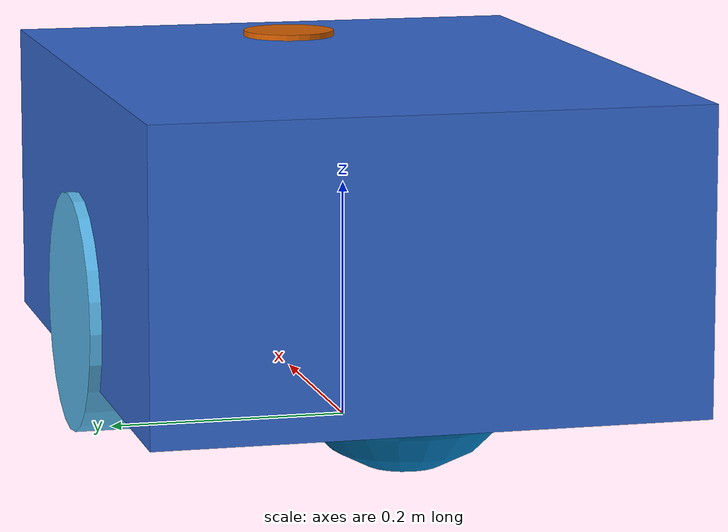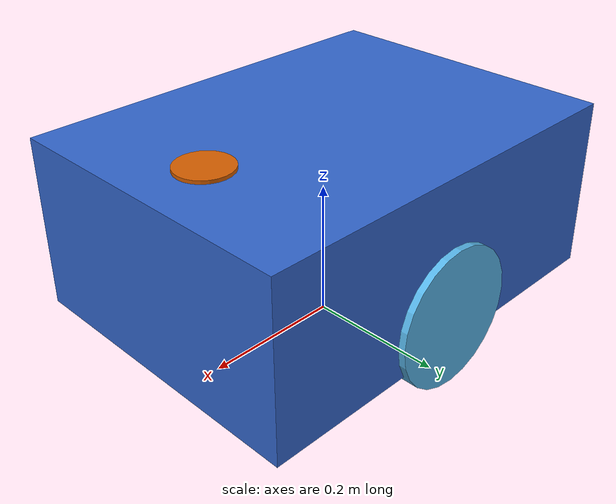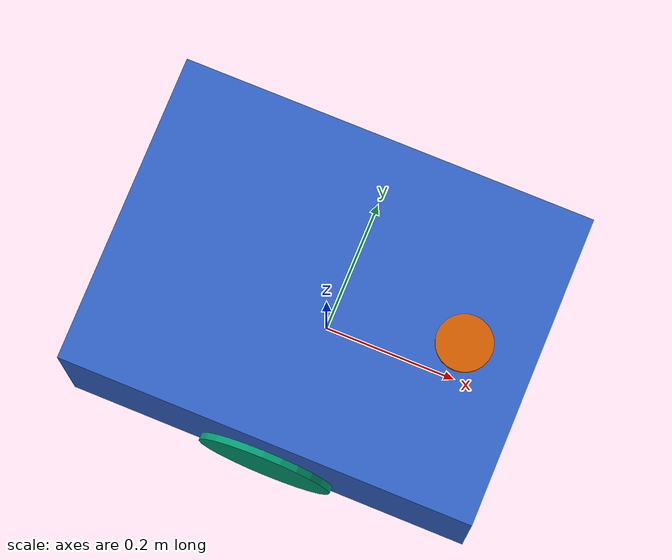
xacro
<?xml version="1.0"?>
<robot xmlns:xacro="http://www.ros.org/wiki/xacro" name="mekoniq_delivery">
  <xacro:arg name="namespace" default="robot_1"/>
  <!-- illustrative sim geometry; keep in sync with config/geometry_sim.yaml (a unit test checks) -->
  <xacro:property name="chassis_length" value="0.60"/>
  <xacro:property name="chassis_width" value="0.45"/>
  <xacro:property name="chassis_height" value="0.25"/>
  <xacro:property name="chassis_mass" value="20.0"/>
  <xacro:property name="wheel_radius" value="0.10"/>
  <xacro:property name="wheel_width" value="0.05"/>
  <xacro:property name="wheel_separation" value="0.42"/>
  <xacro:property name="wheel_mass" value="1.0"/>
  <xacro:property name="ground_clearance" value="0.05"/>
  <xacro:property name="lidar_x" value="0.20"/>
  <xacro:property name="lidar_height" value="0.28"/>
  <xacro:property name="max_linear_speed" value="0.6"/>
  <xacro:property name="ns" value="$(arg namespace)"/>

  <link name="base_link">
    <visual><origin xyz="0 0 ${ground_clearance + chassis_height / 2}"/><geometry><box size="${chassis_length} ${chassis_width} ${chassis_height}"/></geometry>
      <material name="body"><color rgba="0.2 0.4 0.8 1"/></material></visual>
    <collision><origin xyz="0 0 ${ground_clearance + chassis_height / 2}"/><geometry><box size="${chassis_length} ${chassis_width} ${chassis_height}"/></geometry></collision>
    <inertial><origin xyz="0 0 ${ground_clearance + chassis_height / 2}"/><mass value="${chassis_mass}"/>
      <inertia ixx="${chassis_mass * (chassis_width**2 + chassis_height**2) / 12}" iyy="${chassis_mass * (chassis_length**2 + chassis_height**2) / 12}"
               izz="${chassis_mass * (chassis_length**2 + chassis_width**2) / 12}" ixy="0" ixz="0" iyz="0"/></inertial>
  </link>

  <xacro:macro name="wheel" params="name side">
    <link name="${name}_wheel">
      <visual><origin rpy="${pi/2} 0 0"/><geometry><cylinder radius="${wheel_radius}" length="${wheel_width}"/></geometry></visual>
      <collision><origin rpy="${pi/2} 0 0"/><geometry><cylinder radius="${wheel_radius}" length="${wheel_width}"/></geometry></collision>
      <inertial><mass value="${wheel_mass}"/>
        <inertia ixx="${wheel_mass * (3 * wheel_radius**2 + wheel_width**2) / 12}" iyy="${wheel_mass * wheel_radius**2 / 2}"
                 izz="${wheel_mass * (3 * wheel_radius**2 + wheel_width**2) / 12}" ixy="0" ixz="0" iyz="0"/></inertial>
    </link>
    <joint name="${name}_wheel_joint" type="continuous">
      <parent link="base_link"/><child link="${name}_wheel"/><origin xyz="0 ${side * wheel_separation / 2} ${wheel_radius}" rpy="0 0 0"/><axis xyz="0 1 0"/>
    </joint>
  </xacro:macro>
  <xacro:wheel name="left" side="1"/>
  <xacro:wheel name="right" side="-1"/>

  <xacro:macro name="caster" params="name x">
    <link name="${name}_caster">
      <collision><geometry><sphere radius="${wheel_radius}"/></geometry></collision>
      <visual><geometry><sphere radius="${wheel_radius}"/></geometry></visual>
      <inertial><mass value="0.5"/><inertia ixx="0.001" iyy="0.001" izz="0.001" ixy="0" ixz="0" iyz="0"/></inertial>
    </link>
    <joint name="${name}_caster_joint" type="fixed"><parent link="base_link"/><child link="${name}_caster"/><origin xyz="${x} 0 ${wheel_radius}"/></joint>
  </xacro:macro>
  <gazebo reference="front_caster"><mu1>0.0</mu1><mu2>0.0</mu2></gazebo>
  <gazebo reference="rear_caster"><mu1>0.0</mu1><mu2>0.0</mu2></gazebo>
  <xacro:caster name="front" x="${chassis_length / 2 - 0.1}"/>
  <xacro:caster name="rear" x="${-chassis_length / 2 + 0.1}"/>

  <link name="lidar_link">
    <visual><geometry><cylinder radius="0.04" length="0.05"/></geometry></visual>
    <inertial><mass value="0.2"/><inertia ixx="0.0002" iyy="0.0002" izz="0.0002" ixy="0" ixz="0" iyz="0"/></inertial>
  </link>
  <joint name="lidar_joint" type="fixed"><parent link="base_link"/><child link="lidar_link"/><origin xyz="${lidar_x} 0 ${lidar_height}"/></joint>

  <gazebo reference="lidar_link">
    <sensor name="lidar" type="gpu_lidar">
      <topic>/${ns}/scan</topic><gz_frame_id>lidar_link</gz_frame_id><update_rate>10</update_rate><always_on>true</always_on>
      <lidar><scan><horizontal><samples>360</samples><min_angle>-3.14159</min_angle><max_angle>3.14159</max_angle></horizontal></scan>
        <range><min>0.12</min><max>8.0</max><resolution>0.01</resolution></range></lidar>
    </sensor>
  </gazebo>

  <gazebo>
    <plugin filename="gz-sim-diff-drive-system" name="gz::sim::systems::DiffDrive">
      <left_joint>left_wheel_joint</left_joint><right_joint>right_wheel_joint</right_joint>
      <wheel_separation>${wheel_separation}</wheel_separation><wheel_radius>${wheel_radius}</wheel_radius>
      <topic>/${ns}/cmd_vel</topic><odom_topic>/${ns}/odom</odom_topic><tf_topic>/${ns}/tf</tf_topic>
      <frame_id>odom</frame_id><child_frame_id>base_link</child_frame_id><odom_publish_frequency>30</odom_publish_frequency>
      <max_linear_velocity>${max_linear_speed}</max_linear_velocity><max_angular_velocity>1.0</max_angular_velocity>
      <max_linear_acceleration>1.0</max_linear_acceleration><max_angular_acceleration>2.0</max_angular_acceleration>
    </plugin>
    <plugin filename="gz-sim-pose-publisher-system" name="gz::sim::systems::PosePublisher">  <!-- sim ground truth for the scenario tests only -->
      <publish_model_pose>true</publish_model_pose><use_pose_vector_msg>true</use_pose_vector_msg>
    </plugin>
    <plugin filename="gz-sim-joint-state-publisher-system" name="gz::sim::systems::JointStatePublisher">
      <topic>/${ns}/joint_states</topic>
    </plugin>
  </gazebo>
</robot>
